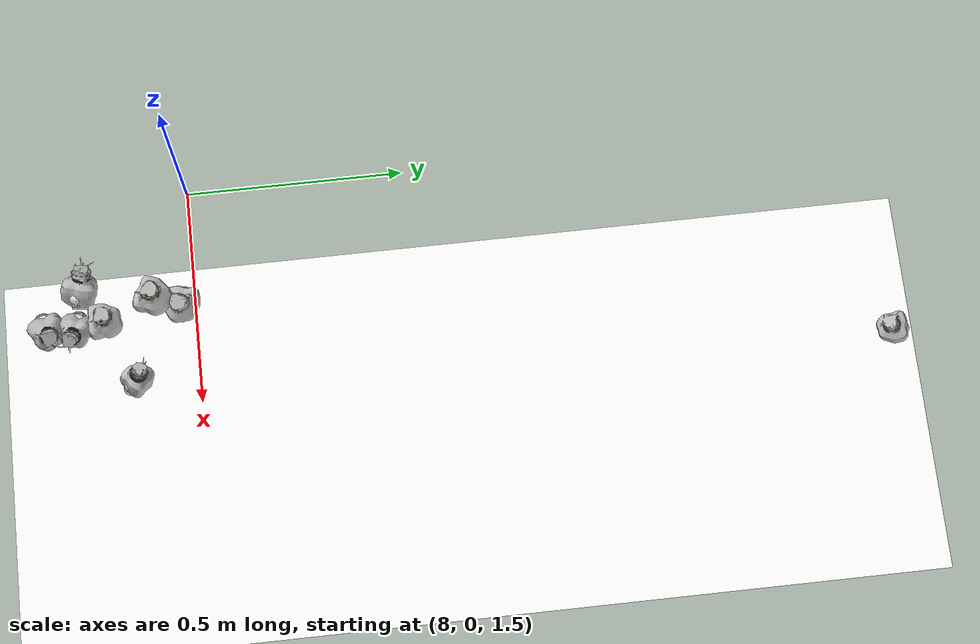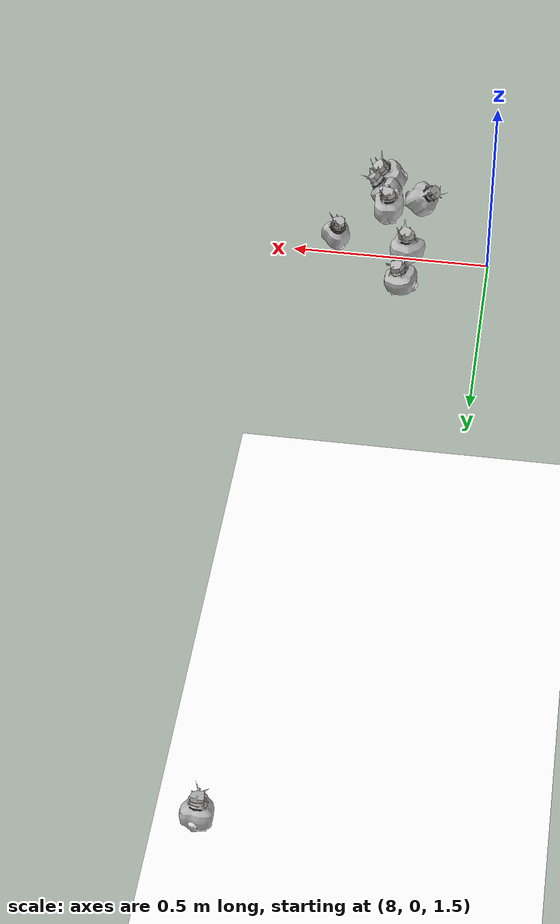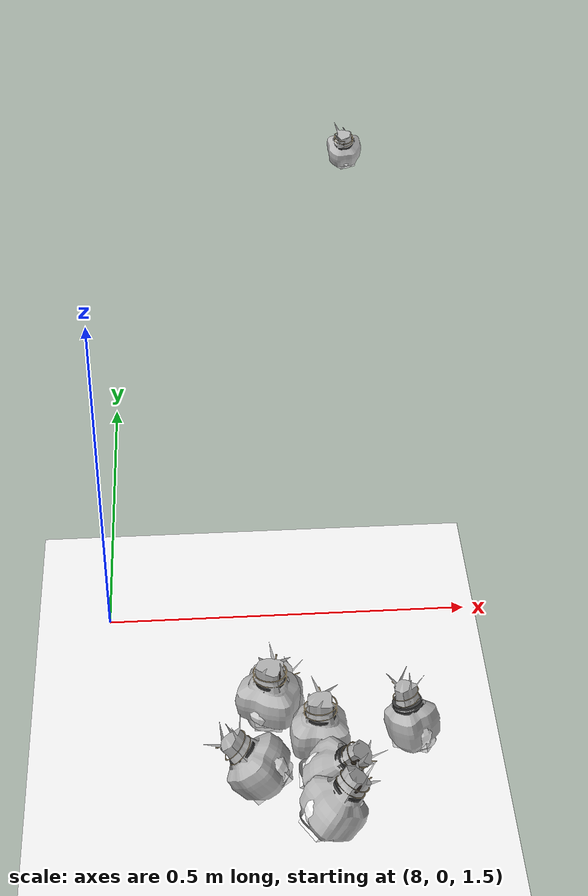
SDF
<sdf version="1.11">
 <world name="peach_orchard">
  <model name="ground">
   <static>true</static>
   <link name="link">
    <visual name="soil">
     <geometry><plane><normal>0 0 1</normal><size>32 22</size></plane></geometry>
     <material>
      <ambient>1 1 1 1</ambient>
      <diffuse>1 1 1 1</diffuse>
      <specular>0.1 0.1 0.1 1</specular>
      <pbr>
       <metal>
        <albedo_map>textures/soil_albedo.png</albedo_map>
        <normal_map type="tangent">textures/soil_normal.png</normal_map>
        <roughness>0.95</roughness>
        <metalness>0</metalness>
       </metal>
      </pbr>
     </material>
    </visual>
    <collision name="c_soil">
     <geometry><plane><normal>0 0 1</normal><size>32 22</size></plane></geometry>
    </collision>
   </link>
  </model>
  <model name="peach_tree_r4_t3_00">
   <pose>8.22 -0.0410292 1.35596 0 0.220568 -0.178716</pose>
   <static>true</static>
   <link name="bag">
    <visual name="bag_mesh">
     <pose>0 0 0.0414403 0 0 -0</pose>
     <geometry>
      <mesh><uri>model://peach_sim/meshes/bagged_peach.glb</uri><scale>1.09015 1.24049 0.941826</scale></mesh>
     </geometry>
    </visual>
    <visual name="body">
     <pose>0 0 0.0234403 0 0 0</pose>
     <geometry><ellipsoid><radii>0.0408805 0.0322527 0.0253156</radii></ellipsoid></geometry>
     <material>
      <ambient>1 1 1 1</ambient>
      <diffuse>1 1 1 1</diffuse>
      <specular>0.1 0.1 0.1 1</specular>
      <pbr>
       <metal>
        <albedo_map>textures/paper_bag_albedo.png</albedo_map>
        <normal_map type="tangent">textures/paper_bag_normal.png</normal_map>
        <roughness>0.72</roughness>
        <metalness>0</metalness>
       </metal>
      </pbr>
     </material>
    </visual>
    <visual name="bottom_fold">
     <pose>0 0 0.012 0 0 0.35</pose>
     <geometry><box><size>0.0633647 0.0370907 0.022</size></box></geometry>
     <material>
      <ambient>1 1 1 1</ambient>
      <diffuse>1 1 1 1</diffuse>
      <specular>0.1 0.1 0.1 1</specular>
      <pbr>
       <metal>
        <albedo_map>textures/paper_bag_albedo.png</albedo_map>
        <normal_map type="tangent">textures/paper_bag_normal.png</normal_map>
        <roughness>0.8</roughness>
        <metalness>0</metalness>
       </metal>
      </pbr>
     </material>
    </visual>
    <visual name="fruit">
     <pose>0 0 0.0204127 0 0 0</pose>
     <geometry><sphere><radius>0.0274692</radius></sphere></geometry>
     <material>
      <ambient>1 1 1 1</ambient>
      <diffuse>1 1 1 1</diffuse>
      <specular>0.1 0.1 0.1 1</specular>
      <pbr>
       <metal>
        <albedo_map>textures/fruit_skin_albedo.png</albedo_map>
        <normal_map type="tangent">textures/fruit_skin_normal.png</normal_map>
        <roughness>0.55</roughness>
        <metalness>0</metalness>
       </metal>
      </pbr>
     </material>
    </visual>
    <visual name="neck">
     <pose>0 0 0.0558807 0 0 0</pose>
     <geometry><cylinder><radius>0.013</radius><length>0.018</length></cylinder></geometry>
     <material>
      <ambient>1 1 1 1</ambient>
      <diffuse>1 1 1 1</diffuse>
      <specular>0.1 0.1 0.1 1</specular>
      <pbr>
       <metal>
        <albedo_map>textures/paper_bag_albedo.png</albedo_map>
        <normal_map type="tangent">textures/paper_bag_normal.png</normal_map>
        <roughness>0.75</roughness>
        <metalness>0</metalness>
       </metal>
      </pbr>
     </material>
    </visual>
    <visual name="gather">
     <pose>0 0 0.0368807 0 0 0</pose>
     <geometry><cylinder><radius>0.019</radius><length>0.02</length></cylinder></geometry>
     <material>
      <ambient>1 1 1 1</ambient>
      <diffuse>1 1 1 1</diffuse>
      <specular>0.1 0.1 0.1 1</specular>
      <pbr>
       <metal>
        <albedo_map>textures/paper_bag_albedo.png</albedo_map>
        <normal_map type="tangent">textures/paper_bag_normal.png</normal_map>
        <roughness>0.8</roughness>
        <metalness>0</metalness>
       </metal>
      </pbr>
     </material>
    </visual>
    <visual name="inner_paper">
     <pose>0 0 0.0608807 0 0 0</pose>
     <geometry><cylinder><radius>0.01</radius><length>0.008</length></cylinder></geometry>
     <material>
      <ambient>0.180392 0.14902 0.133333 1</ambient>
      <diffuse>0.180392 0.14902 0.133333 1</diffuse>
      <specular>0.1 0.1 0.1 1</specular>
     </material>
    </visual>
    <visual name="wire_0">
     <pose>0 0 0.0508807 0 0 0</pose>
     <geometry><cylinder><radius>0.0205</radius><length>0.0035</length></cylinder></geometry>
     <material>
      <ambient>0.25 0.25 0.25 1</ambient>
      <diffuse>0.25 0.25 0.25 1</diffuse>
      <specular>0.1 0.1 0.1 1</specular>
     </material>
    </visual>
    <visual name="wire_1">
     <pose>0 0 0.0578807 0 0 0</pose>
     <geometry><cylinder><radius>0.0205</radius><length>0.0035</length></cylinder></geometry>
     <material>
      <ambient>0.25 0.25 0.25 1</ambient>
      <diffuse>0.25 0.25 0.25 1</diffuse>
      <specular>0.1 0.1 0.1 1</specular>
     </material>
    </visual>
    <visual name="wire_tail">
     <pose>0.01 0 0.0588807 0 0.521618 0</pose>
     <geometry><cylinder><radius>0.0012</radius><length>0.026</length></cylinder></geometry>
     <material>
      <ambient>0.25 0.25 0.25 1</ambient>
      <diffuse>0.25 0.25 0.25 1</diffuse>
      <specular>0.1 0.1 0.1 1</specular>
     </material>
    </visual>
    <collision name="c_body">
     <pose>0 0 0.0234403 0 0 0</pose>
     <geometry><cylinder><radius>0.0408805</radius><length>0.0468807</length></cylinder></geometry>
    </collision>
   </link>
  </model>
  <model name="peach_tree_r4_t3_01">
   <pose>8.22 -0.104086 1.40624 0 0.00576709 1.08474</pose>
   <static>true</static>
   <link name="bag">
    <visual name="bag_mesh">
     <pose>0 0 0.0472173 0 0 0</pose>
     <geometry>
      <mesh><uri>model://peach_sim/meshes/bagged_peach.glb</uri><scale>1.05682 1.26254 1.07312</scale></mesh>
     </geometry>
    </visual>
    <visual name="body">
     <pose>0 0 0.0292173 0 0 0</pose>
     <geometry><ellipsoid><radii>0.0396306 0.0328259 0.0315547</radii></ellipsoid></geometry>
     <material>
      <ambient>1 1 1 1</ambient>
      <diffuse>1 1 1 1</diffuse>
      <specular>0.1 0.1 0.1 1</specular>
      <pbr>
       <metal>
        <albedo_map>textures/paper_bag_albedo.png</albedo_map>
        <normal_map type="tangent">textures/paper_bag_normal.png</normal_map>
        <roughness>0.72</roughness>
        <metalness>0</metalness>
       </metal>
      </pbr>
     </material>
    </visual>
    <visual name="bottom_fold">
     <pose>0 0 0.012 0 0 0.35</pose>
     <geometry><box><size>0.0614274 0.0377498 0.022</size></box></geometry>
     <material>
      <ambient>1 1 1 1</ambient>
      <diffuse>1 1 1 1</diffuse>
      <specular>0.1 0.1 0.1 1</specular>
      <pbr>
       <metal>
        <albedo_map>textures/paper_bag_albedo.png</albedo_map>
        <normal_map type="tangent">textures/paper_bag_normal.png</normal_map>
        <roughness>0.8</roughness>
        <metalness>0</metalness>
       </metal>
      </pbr>
     </material>
    </visual>
    <visual name="fruit">
     <pose>0 0 0.0200169 0 0 0</pose>
     <geometry><sphere><radius>0.0270576</radius></sphere></geometry>
     <material>
      <ambient>1 1 1 1</ambient>
      <diffuse>1 1 1 1</diffuse>
      <specular>0.1 0.1 0.1 1</specular>
      <pbr>
       <metal>
        <albedo_map>textures/fruit_skin_albedo.png</albedo_map>
        <normal_map type="tangent">textures/fruit_skin_normal.png</normal_map>
        <roughness>0.55</roughness>
        <metalness>0</metalness>
       </metal>
      </pbr>
     </material>
    </visual>
    <visual name="neck">
     <pose>0 0 0.0674347 0 0 0</pose>
     <geometry><cylinder><radius>0.013</radius><length>0.018</length></cylinder></geometry>
     <material>
      <ambient>1 1 1 1</ambient>
      <diffuse>1 1 1 1</diffuse>
      <specular>0.1 0.1 0.1 1</specular>
      <pbr>
       <metal>
        <albedo_map>textures/paper_bag_albedo.png</albedo_map>
        <normal_map type="tangent">textures/paper_bag_normal.png</normal_map>
        <roughness>0.75</roughness>
        <metalness>0</metalness>
       </metal>
      </pbr>
     </material>
    </visual>
    <visual name="gather">
     <pose>0 0 0.0484347 0 0 0</pose>
     <geometry><cylinder><radius>0.019</radius><length>0.02</length></cylinder></geometry>
     <material>
      <ambient>1 1 1 1</ambient>
      <diffuse>1 1 1 1</diffuse>
      <specular>0.1 0.1 0.1 1</specular>
      <pbr>
       <metal>
        <albedo_map>textures/paper_bag_albedo.png</albedo_map>
        <normal_map type="tangent">textures/paper_bag_normal.png</normal_map>
        <roughness>0.8</roughness>
        <metalness>0</metalness>
       </metal>
      </pbr>
     </material>
    </visual>
    <visual name="inner_paper">
     <pose>0 0 0.0724347 0 0 0</pose>
     <geometry><cylinder><radius>0.01</radius><length>0.008</length></cylinder></geometry>
     <material>
      <ambient>0.180392 0.14902 0.133333 1</ambient>
      <diffuse>0.180392 0.14902 0.133333 1</diffuse>
      <specular>0.1 0.1 0.1 1</specular>
     </material>
    </visual>
    <visual name="wire_0">
     <pose>0 0 0.0624347 0 0 0</pose>
     <geometry><cylinder><radius>0.0205</radius><length>0.0035</length></cylinder></geometry>
     <material>
      <ambient>0.25 0.25 0.25 1</ambient>
      <diffuse>0.25 0.25 0.25 1</diffuse>
      <specular>0.1 0.1 0.1 1</specular>
     </material>
    </visual>
    <visual name="wire_1">
     <pose>0 0 0.0694347 0 0 0</pose>
     <geometry><cylinder><radius>0.0205</radius><length>0.0035</length></cylinder></geometry>
     <material>
      <ambient>0.25 0.25 0.25 1</ambient>
      <diffuse>0.25 0.25 0.25 1</diffuse>
      <specular>0.1 0.1 0.1 1</specular>
     </material>
    </visual>
    <visual name="wire_tail">
     <pose>0.01 0 0.0704347 0 0.521618 0</pose>
     <geometry><cylinder><radius>0.0012</radius><length>0.026</length></cylinder></geometry>
     <material>
      <ambient>0.25 0.25 0.25 1</ambient>
      <diffuse>0.25 0.25 0.25 1</diffuse>
      <specular>0.1 0.1 0.1 1</specular>
     </material>
    </visual>
    <collision name="c_body">
     <pose>0 0 0.0292173 0 0 0</pose>
     <geometry><cylinder><radius>0.0396306</radius><length>0.0584347</length></cylinder></geometry>
    </collision>
   </link>
  </model>
  <model name="peach_tree_r4_t3_02">
   <pose>8.22 -0.271435 1.45 0 0.734346 2.8381</pose>
   <static>true</static>
   <link name="bag">
    <visual name="bag_mesh">
     <pose>0 0 0.0462154 0 0 0</pose>
     <geometry>
      <mesh><uri>model://peach_sim/meshes/bagged_peach.glb</uri><scale>1.00736 1.21828 1.05035</scale></mesh>
     </geometry>
    </visual>
    <visual name="body">
     <pose>0 0 0.0282154 0 0 0</pose>
     <geometry><ellipsoid><radii>0.0377759 0.0316753 0.0304727</radii></ellipsoid></geometry>
     <material>
      <ambient>1 1 1 1</ambient>
      <diffuse>1 1 1 1</diffuse>
      <specular>0.1 0.1 0.1 1</specular>
      <pbr>
       <metal>
        <albedo_map>textures/paper_bag_albedo.png</albedo_map>
        <normal_map type="tangent">textures/paper_bag_normal.png</normal_map>
        <roughness>0.72</roughness>
        <metalness>0</metalness>
       </metal>
      </pbr>
     </material>
    </visual>
    <visual name="bottom_fold">
     <pose>0 0 0.012 0 0 0.35</pose>
     <geometry><box><size>0.0585526 0.0364266 0.022</size></box></geometry>
     <material>
      <ambient>1 1 1 1</ambient>
      <diffuse>1 1 1 1</diffuse>
      <specular>0.1 0.1 0.1 1</specular>
      <pbr>
       <metal>
        <albedo_map>textures/paper_bag_albedo.png</albedo_map>
        <normal_map type="tangent">textures/paper_bag_normal.png</normal_map>
        <roughness>0.8</roughness>
        <metalness>0</metalness>
       </metal>
      </pbr>
     </material>
    </visual>
    <visual name="fruit">
     <pose>0 0 0.0198656 0 0 0</pose>
     <geometry><sphere><radius>0.0269002</radius></sphere></geometry>
     <material>
      <ambient>1 1 1 1</ambient>
      <diffuse>1 1 1 1</diffuse>
      <specular>0.1 0.1 0.1 1</specular>
      <pbr>
       <metal>
        <albedo_map>textures/fruit_skin_albedo.png</albedo_map>
        <normal_map type="tangent">textures/fruit_skin_normal.png</normal_map>
        <roughness>0.55</roughness>
        <metalness>0</metalness>
       </metal>
      </pbr>
     </material>
    </visual>
    <visual name="neck">
     <pose>0 0 0.0654309 0 0 0</pose>
     <geometry><cylinder><radius>0.013</radius><length>0.018</length></cylinder></geometry>
     <material>
      <ambient>1 1 1 1</ambient>
      <diffuse>1 1 1 1</diffuse>
      <specular>0.1 0.1 0.1 1</specular>
      <pbr>
       <metal>
        <albedo_map>textures/paper_bag_albedo.png</albedo_map>
        <normal_map type="tangent">textures/paper_bag_normal.png</normal_map>
        <roughness>0.75</roughness>
        <metalness>0</metalness>
       </metal>
      </pbr>
     </material>
    </visual>
    <visual name="gather">
     <pose>0 0 0.0464309 0 0 0</pose>
     <geometry><cylinder><radius>0.019</radius><length>0.02</length></cylinder></geometry>
     <material>
      <ambient>1 1 1 1</ambient>
      <diffuse>1 1 1 1</diffuse>
      <specular>0.1 0.1 0.1 1</specular>
      <pbr>
       <metal>
        <albedo_map>textures/paper_bag_albedo.png</albedo_map>
        <normal_map type="tangent">textures/paper_bag_normal.png</normal_map>
        <roughness>0.8</roughness>
        <metalness>0</metalness>
       </metal>
      </pbr>
     </material>
    </visual>
    <visual name="inner_paper">
     <pose>0 0 0.0704309 0 0 0</pose>
     <geometry><cylinder><radius>0.01</radius><length>0.008</length></cylinder></geometry>
     <material>
      <ambient>0.180392 0.14902 0.133333 1</ambient>
      <diffuse>0.180392 0.14902 0.133333 1</diffuse>
      <specular>0.1 0.1 0.1 1</specular>
     </material>
    </visual>
    <visual name="wire_0">
     <pose>0 0 0.0604309 0 0 0</pose>
     <geometry><cylinder><radius>0.0205</radius><length>0.0035</length></cylinder></geometry>
     <material>
      <ambient>0.25 0.25 0.25 1</ambient>
      <diffuse>0.25 0.25 0.25 1</diffuse>
      <specular>0.1 0.1 0.1 1</specular>
     </material>
    </visual>
    <visual name="wire_1">
     <pose>0 0 0.0674309 0 0 0</pose>
     <geometry><cylinder><radius>0.0205</radius><length>0.0035</length></cylinder></geometry>
     <material>
      <ambient>0.25 0.25 0.25 1</ambient>
      <diffuse>0.25 0.25 0.25 1</diffuse>
      <specular>0.1 0.1 0.1 1</specular>
     </material>
    </visual>
    <visual name="wire_tail">
     <pose>0.01 0 0.0684309 0 0.521618 0</pose>
     <geometry><cylinder><radius>0.0012</radius><length>0.026</length></cylinder></geometry>
     <material>
      <ambient>0.25 0.25 0.25 1</ambient>
      <diffuse>0.25 0.25 0.25 1</diffuse>
      <specular>0.1 0.1 0.1 1</specular>
     </material>
    </visual>
    <collision name="c_body">
     <pose>0 0 0.0282154 0 0 0</pose>
     <geometry><cylinder><radius>0.0377759</radius><length>0.0564309</length></cylinder></geometry>
    </collision>
   </link>
  </model>
  <model name="peach_tree_r4_t3_03">
   <pose>8.27245 -0.349939 1.45 0 0.590668 0.337335</pose>
   <static>true</static>
   <link name="bag">
    <visual name="bag_mesh">
     <pose>0 0 0.046776 0 0 0</pose>
     <geometry>
      <mesh><uri>model://peach_sim/meshes/bagged_peach.glb</uri><scale>1.01029 1.21573 1.06309</scale></mesh>
     </geometry>
    </visual>
    <visual name="body">
     <pose>0 0 0.028776 0 0 0</pose>
     <geometry><ellipsoid><radii>0.0378858 0.031609 0.0310781</radii></ellipsoid></geometry>
     <material>
      <ambient>1 1 1 1</ambient>
      <diffuse>1 1 1 1</diffuse>
      <specular>0.1 0.1 0.1 1</specular>
      <pbr>
       <metal>
        <albedo_map>textures/paper_bag_albedo.png</albedo_map>
        <normal_map type="tangent">textures/paper_bag_normal.png</normal_map>
        <roughness>0.72</roughness>
        <metalness>0</metalness>
       </metal>
      </pbr>
     </material>
    </visual>
    <visual name="bottom_fold">
     <pose>0 0 0.012 0 0 0.35</pose>
     <geometry><box><size>0.0587229 0.0363503 0.022</size></box></geometry>
     <material>
      <ambient>1 1 1 1</ambient>
      <diffuse>1 1 1 1</diffuse>
      <specular>0.1 0.1 0.1 1</specular>
      <pbr>
       <metal>
        <albedo_map>textures/paper_bag_albedo.png</albedo_map>
        <normal_map type="tangent">textures/paper_bag_normal.png</normal_map>
        <roughness>0.8</roughness>
        <metalness>0</metalness>
       </metal>
      </pbr>
     </material>
    </visual>
    <visual name="fruit">
     <pose>0 0 0.0205486 0 0 0</pose>
     <geometry><sphere><radius>0.0276105</radius></sphere></geometry>
     <material>
      <ambient>1 1 1 1</ambient>
      <diffuse>1 1 1 1</diffuse>
      <specular>0.1 0.1 0.1 1</specular>
      <pbr>
       <metal>
        <albedo_map>textures/fruit_skin_albedo.png</albedo_map>
        <normal_map type="tangent">textures/fruit_skin_normal.png</normal_map>
        <roughness>0.55</roughness>
        <metalness>0</metalness>
       </metal>
      </pbr>
     </material>
    </visual>
    <visual name="neck">
     <pose>0 0 0.0665521 0 0 0</pose>
     <geometry><cylinder><radius>0.013</radius><length>0.018</length></cylinder></geometry>
     <material>
      <ambient>1 1 1 1</ambient>
      <diffuse>1 1 1 1</diffuse>
      <specular>0.1 0.1 0.1 1</specular>
      <pbr>
       <metal>
        <albedo_map>textures/paper_bag_albedo.png</albedo_map>
        <normal_map type="tangent">textures/paper_bag_normal.png</normal_map>
        <roughness>0.75</roughness>
        <metalness>0</metalness>
       </metal>
      </pbr>
     </material>
    </visual>
    <visual name="gather">
     <pose>0 0 0.0475521 0 0 0</pose>
     <geometry><cylinder><radius>0.019</radius><length>0.02</length></cylinder></geometry>
     <material>
      <ambient>1 1 1 1</ambient>
      <diffuse>1 1 1 1</diffuse>
      <specular>0.1 0.1 0.1 1</specular>
      <pbr>
       <metal>
        <albedo_map>textures/paper_bag_albedo.png</albedo_map>
        <normal_map type="tangent">textures/paper_bag_normal.png</normal_map>
        <roughness>0.8</roughness>
        <metalness>0</metalness>
       </metal>
      </pbr>
     </material>
    </visual>
    <visual name="inner_paper">
     <pose>0 0 0.0715521 0 0 0</pose>
     <geometry><cylinder><radius>0.01</radius><length>0.008</length></cylinder></geometry>
     <material>
      <ambient>0.180392 0.14902 0.133333 1</ambient>
      <diffuse>0.180392 0.14902 0.133333 1</diffuse>
      <specular>0.1 0.1 0.1 1</specular>
     </material>
    </visual>
    <visual name="wire_0">
     <pose>0 0 0.0615521 0 0 0</pose>
     <geometry><cylinder><radius>0.0205</radius><length>0.0035</length></cylinder></geometry>
     <material>
      <ambient>0.25 0.25 0.25 1</ambient>
      <diffuse>0.25 0.25 0.25 1</diffuse>
      <specular>0.1 0.1 0.1 1</specular>
     </material>
    </visual>
    <visual name="wire_1">
     <pose>0 0 0.0685521 0 0 0</pose>
     <geometry><cylinder><radius>0.0205</radius><length>0.0035</length></cylinder></geometry>
     <material>
      <ambient>0.25 0.25 0.25 1</ambient>
      <diffuse>0.25 0.25 0.25 1</diffuse>
      <specular>0.1 0.1 0.1 1</specular>
     </material>
    </visual>
    <visual name="wire_tail">
     <pose>0.01 0 0.0695521 0 0.521618 0</pose>
     <geometry><cylinder><radius>0.0012</radius><length>0.026</length></cylinder></geometry>
     <material>
      <ambient>0.25 0.25 0.25 1</ambient>
      <diffuse>0.25 0.25 0.25 1</diffuse>
      <specular>0.1 0.1 0.1 1</specular>
     </material>
    </visual>
    <collision name="c_body">
     <pose>0 0 0.028776 0 0 0</pose>
     <geometry><cylinder><radius>0.0378858</radius><length>0.0575521</length></cylinder></geometry>
    </collision>
   </link>
  </model>
  <model name="peach_tree_r4_t3_05">
   <pose>8.41745 -0.15807 1.39367 0 0.252307 2.25938</pose>
   <static>true</static>
   <link name="bag">
    <visual name="bag_mesh">
     <pose>0 0 0.0486111 0 0 0</pose>
     <geometry>
      <mesh><uri>model://peach_sim/meshes/bagged_peach.glb</uri><scale>0.912537 0.976938 1.1048</scale></mesh>
     </geometry>
    </visual>
    <visual name="body">
     <pose>0 0 0.0306111 0 0 0</pose>
     <geometry><ellipsoid><radii>0.0342201 0.0254004 0.03306</radii></ellipsoid></geometry>
     <material>
      <ambient>1 1 1 1</ambient>
      <diffuse>1 1 1 1</diffuse>
      <specular>0.1 0.1 0.1 1</specular>
      <pbr>
       <metal>
        <albedo_map>textures/paper_bag_albedo.png</albedo_map>
        <normal_map type="tangent">textures/paper_bag_normal.png</normal_map>
        <roughness>0.72</roughness>
        <metalness>0</metalness>
       </metal>
      </pbr>
     </material>
    </visual>
    <visual name="bottom_fold">
     <pose>0 0 0.012 0 0 0.35</pose>
     <geometry><box><size>0.0530412 0.0292104 0.022</size></box></geometry>
     <material>
      <ambient>1 1 1 1</ambient>
      <diffuse>1 1 1 1</diffuse>
      <specular>0.1 0.1 0.1 1</specular>
      <pbr>
       <metal>
        <albedo_map>textures/paper_bag_albedo.png</albedo_map>
        <normal_map type="tangent">textures/paper_bag_normal.png</normal_map>
        <roughness>0.8</roughness>
        <metalness>0</metalness>
       </metal>
      </pbr>
     </material>
    </visual>
    <visual name="fruit">
     <pose>0 0 0.0202534 0 0 0</pose>
     <geometry><sphere><radius>0.0273035</radius></sphere></geometry>
     <material>
      <ambient>1 1 1 1</ambient>
      <diffuse>1 1 1 1</diffuse>
      <specular>0.1 0.1 0.1 1</specular>
      <pbr>
       <metal>
        <albedo_map>textures/fruit_skin_albedo.png</albedo_map>
        <normal_map type="tangent">textures/fruit_skin_normal.png</normal_map>
        <roughness>0.55</roughness>
        <metalness>0</metalness>
       </metal>
      </pbr>
     </material>
    </visual>
    <visual name="neck">
     <pose>0 0 0.0702223 0 0 0</pose>
     <geometry><cylinder><radius>0.013</radius><length>0.018</length></cylinder></geometry>
     <material>
      <ambient>1 1 1 1</ambient>
      <diffuse>1 1 1 1</diffuse>
      <specular>0.1 0.1 0.1 1</specular>
      <pbr>
       <metal>
        <albedo_map>textures/paper_bag_albedo.png</albedo_map>
        <normal_map type="tangent">textures/paper_bag_normal.png</normal_map>
        <roughness>0.75</roughness>
        <metalness>0</metalness>
       </metal>
      </pbr>
     </material>
    </visual>
    <visual name="gather">
     <pose>0 0 0.0512223 0 0 0</pose>
     <geometry><cylinder><radius>0.019</radius><length>0.02</length></cylinder></geometry>
     <material>
      <ambient>1 1 1 1</ambient>
      <diffuse>1 1 1 1</diffuse>
      <specular>0.1 0.1 0.1 1</specular>
      <pbr>
       <metal>
        <albedo_map>textures/paper_bag_albedo.png</albedo_map>
        <normal_map type="tangent">textures/paper_bag_normal.png</normal_map>
        <roughness>0.8</roughness>
        <metalness>0</metalness>
       </metal>
      </pbr>
     </material>
    </visual>
    <visual name="inner_paper">
     <pose>0 0 0.0752223 0 0 0</pose>
     <geometry><cylinder><radius>0.01</radius><length>0.008</length></cylinder></geometry>
     <material>
      <ambient>0.180392 0.14902 0.133333 1</ambient>
      <diffuse>0.180392 0.14902 0.133333 1</diffuse>
      <specular>0.1 0.1 0.1 1</specular>
     </material>
    </visual>
    <visual name="wire_0">
     <pose>0 0 0.0652223 0 0 0</pose>
     <geometry><cylinder><radius>0.0205</radius><length>0.0035</length></cylinder></geometry>
     <material>
      <ambient>0.25 0.25 0.25 1</ambient>
      <diffuse>0.25 0.25 0.25 1</diffuse>
      <specular>0.1 0.1 0.1 1</specular>
     </material>
    </visual>
    <visual name="wire_1">
     <pose>0 0 0.0722223 0 0 0</pose>
     <geometry><cylinder><radius>0.0205</radius><length>0.0035</length></cylinder></geometry>
     <material>
      <ambient>0.25 0.25 0.25 1</ambient>
      <diffuse>0.25 0.25 0.25 1</diffuse>
      <specular>0.1 0.1 0.1 1</specular>
     </material>
    </visual>
    <visual name="wire_tail">
     <pose>0.01 0 0.0732223 0 0.521618 0</pose>
     <geometry><cylinder><radius>0.0012</radius><length>0.026</length></cylinder></geometry>
     <material>
      <ambient>0.25 0.25 0.25 1</ambient>
      <diffuse>0.25 0.25 0.25 1</diffuse>
      <specular>0.1 0.1 0.1 1</specular>
     </material>
    </visual>
    <collision name="c_body">
     <pose>0 0 0.0306111 0 0 0</pose>
     <geometry><cylinder><radius>0.0342201</radius><length>0.0612223</length></cylinder></geometry>
    </collision>
   </link>
  </model>
  <model name="peach_tree_r4_t3_06">
   <pose>8.28208 -0.214717 1.45 0 0.0443494 1.501</pose>
   <static>true</static>
   <link name="bag">
    <visual name="bag_mesh">
     <pose>0 0 0.0456788 0 0 0</pose>
     <geometry>
      <mesh><uri>model://peach_sim/meshes/bagged_peach.glb</uri><scale>1.021 1.15937 1.03815</scale></mesh>
     </geometry>
    </visual>
    <visual name="body">
     <pose>0 0 0.0276788 0 0 0</pose>
     <geometry><ellipsoid><radii>0.0382875 0.0301437 0.0298931</radii></ellipsoid></geometry>
     <material>
      <ambient>1 1 1 1</ambient>
      <diffuse>1 1 1 1</diffuse>
      <specular>0.1 0.1 0.1 1</specular>
      <pbr>
       <metal>
        <albedo_map>textures/paper_bag_albedo.png</albedo_map>
        <normal_map type="tangent">textures/paper_bag_normal.png</normal_map>
        <roughness>0.72</roughness>
        <metalness>0</metalness>
       </metal>
      </pbr>
     </material>
    </visual>
    <visual name="bottom_fold">
     <pose>0 0 0.012 0 0 0.35</pose>
     <geometry><box><size>0.0593456 0.0346652 0.022</size></box></geometry>
     <material>
      <ambient>1 1 1 1</ambient>
      <diffuse>1 1 1 1</diffuse>
      <specular>0.1 0.1 0.1 1</specular>
      <pbr>
       <metal>
        <albedo_map>textures/paper_bag_albedo.png</albedo_map>
        <normal_map type="tangent">textures/paper_bag_normal.png</normal_map>
        <roughness>0.8</roughness>
        <metalness>0</metalness>
       </metal>
      </pbr>
     </material>
    </visual>
    <visual name="fruit">
     <pose>0 0 0.0176248 0 0 0</pose>
     <geometry><sphere><radius>0.0245698</radius></sphere></geometry>
     <material>
      <ambient>1 1 1 1</ambient>
      <diffuse>1 1 1 1</diffuse>
      <specular>0.1 0.1 0.1 1</specular>
      <pbr>
       <metal>
        <albedo_map>textures/fruit_skin_albedo.png</albedo_map>
        <normal_map type="tangent">textures/fruit_skin_normal.png</normal_map>
        <roughness>0.55</roughness>
        <metalness>0</metalness>
       </metal>
      </pbr>
     </material>
    </visual>
    <visual name="neck">
     <pose>0 0 0.0643576 0 0 0</pose>
     <geometry><cylinder><radius>0.013</radius><length>0.018</length></cylinder></geometry>
     <material>
      <ambient>1 1 1 1</ambient>
      <diffuse>1 1 1 1</diffuse>
      <specular>0.1 0.1 0.1 1</specular>
      <pbr>
       <metal>
        <albedo_map>textures/paper_bag_albedo.png</albedo_map>
        <normal_map type="tangent">textures/paper_bag_normal.png</normal_map>
        <roughness>0.75</roughness>
        <metalness>0</metalness>
       </metal>
      </pbr>
     </material>
    </visual>
    <visual name="gather">
     <pose>0 0 0.0453576 0 0 0</pose>
     <geometry><cylinder><radius>0.019</radius><length>0.02</length></cylinder></geometry>
     <material>
      <ambient>1 1 1 1</ambient>
      <diffuse>1 1 1 1</diffuse>
      <specular>0.1 0.1 0.1 1</specular>
      <pbr>
       <metal>
        <albedo_map>textures/paper_bag_albedo.png</albedo_map>
        <normal_map type="tangent">textures/paper_bag_normal.png</normal_map>
        <roughness>0.8</roughness>
        <metalness>0</metalness>
       </metal>
      </pbr>
     </material>
    </visual>
    <visual name="inner_paper">
     <pose>0 0 0.0693576 0 0 0</pose>
     <geometry><cylinder><radius>0.01</radius><length>0.008</length></cylinder></geometry>
     <material>
      <ambient>0.180392 0.14902 0.133333 1</ambient>
      <diffuse>0.180392 0.14902 0.133333 1</diffuse>
      <specular>0.1 0.1 0.1 1</specular>
     </material>
    </visual>
    <visual name="wire_0">
     <pose>0 0 0.0593576 0 0 0</pose>
     <geometry><cylinder><radius>0.0205</radius><length>0.0035</length></cylinder></geometry>
     <material>
      <ambient>0.25 0.25 0.25 1</ambient>
      <diffuse>0.25 0.25 0.25 1</diffuse>
      <specular>0.1 0.1 0.1 1</specular>
     </material>
    </visual>
    <visual name="wire_1">
     <pose>0 0 0.0663576 0 0 0</pose>
     <geometry><cylinder><radius>0.0205</radius><length>0.0035</length></cylinder></geometry>
     <material>
      <ambient>0.25 0.25 0.25 1</ambient>
      <diffuse>0.25 0.25 0.25 1</diffuse>
      <specular>0.1 0.1 0.1 1</specular>
     </material>
    </visual>
    <visual name="wire_tail">
     <pose>0.01 0 0.0673576 0 0.521618 0</pose>
     <geometry><cylinder><radius>0.0012</radius><length>0.026</length></cylinder></geometry>
     <material>
      <ambient>0.25 0.25 0.25 1</ambient>
      <diffuse>0.25 0.25 0.25 1</diffuse>
      <specular>0.1 0.1 0.1 1</specular>
     </material>
    </visual>
    <collision name="c_body">
     <pose>0 0 0.0276788 0 0 0</pose>
     <geometry><cylinder><radius>0.0382875</radius><length>0.0553576</length></cylinder></geometry>
    </collision>
   </link>
  </model>
  <model name="peach_tree_r4_t3_07">
   <pose>8.27172 -0.271973 1.45 0 0.698647 -0.286604</pose>
   <static>true</static>
   <link name="bag">
    <visual name="bag_mesh">
     <pose>0 0 0.0484783 0 0 -0</pose>
     <geometry>
      <mesh><uri>model://peach_sim/meshes/bagged_peach.glb</uri><scale>0.966736 1.05616 1.10178</scale></mesh>
     </geometry>
    </visual>
    <visual name="body">
     <pose>0 0 0.0304783 0 0 0</pose>
     <geometry><ellipsoid><radii>0.0362526 0.0274602 0.0329166</radii></ellipsoid></geometry>
     <material>
      <ambient>1 1 1 1</ambient>
      <diffuse>1 1 1 1</diffuse>
      <specular>0.1 0.1 0.1 1</specular>
      <pbr>
       <metal>
        <albedo_map>textures/paper_bag_albedo.png</albedo_map>
        <normal_map type="tangent">textures/paper_bag_normal.png</normal_map>
        <roughness>0.72</roughness>
        <metalness>0</metalness>
       </metal>
      </pbr>
     </material>
    </visual>
    <visual name="bottom_fold">
     <pose>0 0 0.012 0 0 0.35</pose>
     <geometry><box><size>0.0561916 0.0315792 0.022</size></box></geometry>
     <material>
      <ambient>1 1 1 1</ambient>
      <diffuse>1 1 1 1</diffuse>
      <specular>0.1 0.1 0.1 1</specular>
      <pbr>
       <metal>
        <albedo_map>textures/paper_bag_albedo.png</albedo_map>
        <normal_map type="tangent">textures/paper_bag_normal.png</normal_map>
        <roughness>0.8</roughness>
        <metalness>0</metalness>
       </metal>
      </pbr>
     </material>
    </visual>
    <visual name="fruit">
     <pose>0 0 0.0179287 0 0 0</pose>
     <geometry><sphere><radius>0.0248859</radius></sphere></geometry>
     <material>
      <ambient>1 1 1 1</ambient>
      <diffuse>1 1 1 1</diffuse>
      <specular>0.1 0.1 0.1 1</specular>
      <pbr>
       <metal>
        <albedo_map>textures/fruit_skin_albedo.png</albedo_map>
        <normal_map type="tangent">textures/fruit_skin_normal.png</normal_map>
        <roughness>0.55</roughness>
        <metalness>0</metalness>
       </metal>
      </pbr>
     </material>
    </visual>
    <visual name="neck">
     <pose>0 0 0.0699566 0 0 0</pose>
     <geometry><cylinder><radius>0.013</radius><length>0.018</length></cylinder></geometry>
     <material>
      <ambient>1 1 1 1</ambient>
      <diffuse>1 1 1 1</diffuse>
      <specular>0.1 0.1 0.1 1</specular>
      <pbr>
       <metal>
        <albedo_map>textures/paper_bag_albedo.png</albedo_map>
        <normal_map type="tangent">textures/paper_bag_normal.png</normal_map>
        <roughness>0.75</roughness>
        <metalness>0</metalness>
       </metal>
      </pbr>
     </material>
    </visual>
    <visual name="gather">
     <pose>0 0 0.0509566 0 0 0</pose>
     <geometry><cylinder><radius>0.019</radius><length>0.02</length></cylinder></geometry>
     <material>
      <ambient>1 1 1 1</ambient>
      <diffuse>1 1 1 1</diffuse>
      <specular>0.1 0.1 0.1 1</specular>
      <pbr>
       <metal>
        <albedo_map>textures/paper_bag_albedo.png</albedo_map>
        <normal_map type="tangent">textures/paper_bag_normal.png</normal_map>
        <roughness>0.8</roughness>
        <metalness>0</metalness>
       </metal>
      </pbr>
     </material>
    </visual>
    <visual name="inner_paper">
     <pose>0 0 0.0749566 0 0 0</pose>
     <geometry><cylinder><radius>0.01</radius><length>0.008</length></cylinder></geometry>
     <material>
      <ambient>0.180392 0.14902 0.133333 1</ambient>
      <diffuse>0.180392 0.14902 0.133333 1</diffuse>
      <specular>0.1 0.1 0.1 1</specular>
     </material>
    </visual>
    <visual name="wire_0">
     <pose>0 0 0.0649566 0 0 0</pose>
     <geometry><cylinder><radius>0.0205</radius><length>0.0035</length></cylinder></geometry>
     <material>
      <ambient>0.25 0.25 0.25 1</ambient>
      <diffuse>0.25 0.25 0.25 1</diffuse>
      <specular>0.1 0.1 0.1 1</specular>
     </material>
    </visual>
    <visual name="wire_1">
     <pose>0 0 0.0719566 0 0 0</pose>
     <geometry><cylinder><radius>0.0205</radius><length>0.0035</length></cylinder></geometry>
     <material>
      <ambient>0.25 0.25 0.25 1</ambient>
      <diffuse>0.25 0.25 0.25 1</diffuse>
      <specular>0.1 0.1 0.1 1</specular>
     </material>
    </visual>
    <visual name="wire_tail">
     <pose>0.01 0 0.0729566 0 0.521618 0</pose>
     <geometry><cylinder><radius>0.0012</radius><length>0.026</length></cylinder></geometry>
     <material>
      <ambient>0.25 0.25 0.25 1</ambient>
      <diffuse>0.25 0.25 0.25 1</diffuse>
      <specular>0.1 0.1 0.1 1</specular>
     </material>
    </visual>
    <collision name="c_body">
     <pose>0 0 0.0304783 0 0 0</pose>
     <geometry><cylinder><radius>0.0362526</radius><length>0.0609566</length></cylinder></geometry>
    </collision>
   </link>
  </model>
  <model name="peach_tree_r4_t4_05">
   <pose>8.45948 1.6186 1.33732 0 0.295188 -1.63974</pose>
   <static>true</static>
   <link name="bag">
    <visual name="bag_mesh">
     <pose>0 0 0.0380833 0 0 -0</pose>
     <geometry>
      <mesh><uri>model://peach_sim/meshes/bagged_peach.glb</uri><scale>0.918695 1.06615 0.865529</scale></mesh>
     </geometry>
    </visual>
    <visual name="body">
     <pose>0 0 0.0200833 0 0 0</pose>
     <geometry><ellipsoid><radii>0.0344511 0.0277198 0.0216899</radii></ellipsoid></geometry>
     <material>
      <ambient>1 1 1 1</ambient>
      <diffuse>1 1 1 1</diffuse>
      <specular>0.1 0.1 0.1 1</specular>
      <pbr>
       <metal>
        <albedo_map>textures/paper_bag_albedo.png</albedo_map>
        <normal_map type="tangent">textures/paper_bag_normal.png</normal_map>
        <roughness>0.72</roughness>
        <metalness>0</metalness>
       </metal>
      </pbr>
     </material>
    </visual>
    <visual name="bottom_fold">
     <pose>0 0 0.012 0 0 0.35</pose>
     <geometry><box><size>0.0533992 0.0318777 0.022</size></box></geometry>
     <material>
      <ambient>1 1 1 1</ambient>
      <diffuse>1 1 1 1</diffuse>
      <specular>0.1 0.1 0.1 1</specular>
      <pbr>
       <metal>
        <albedo_map>textures/paper_bag_albedo.png</albedo_map>
        <normal_map type="tangent">textures/paper_bag_normal.png</normal_map>
        <roughness>0.8</roughness>
        <metalness>0</metalness>
       </metal>
      </pbr>
     </material>
    </visual>
    <visual name="fruit">
     <pose>0 0 0.0174527 0 0 0</pose>
     <geometry><sphere><radius>0.0243908</radius></sphere></geometry>
     <material>
      <ambient>1 1 1 1</ambient>
      <diffuse>1 1 1 1</diffuse>
      <specular>0.1 0.1 0.1 1</specular>
      <pbr>
       <metal>
        <albedo_map>textures/fruit_skin_albedo.png</albedo_map>
        <normal_map type="tangent">textures/fruit_skin_normal.png</normal_map>
        <roughness>0.55</roughness>
        <metalness>0</metalness>
       </metal>
      </pbr>
     </material>
    </visual>
    <visual name="neck">
     <pose>0 0 0.0491666 0 0 0</pose>
     <geometry><cylinder><radius>0.013</radius><length>0.018</length></cylinder></geometry>
     <material>
      <ambient>1 1 1 1</ambient>
      <diffuse>1 1 1 1</diffuse>
      <specular>0.1 0.1 0.1 1</specular>
      <pbr>
       <metal>
        <albedo_map>textures/paper_bag_albedo.png</albedo_map>
        <normal_map type="tangent">textures/paper_bag_normal.png</normal_map>
        <roughness>0.75</roughness>
        <metalness>0</metalness>
       </metal>
      </pbr>
     </material>
    </visual>
    <visual name="gather">
     <pose>0 0 0.0301666 0 0 0</pose>
     <geometry><cylinder><radius>0.019</radius><length>0.02</length></cylinder></geometry>
     <material>
      <ambient>1 1 1 1</ambient>
      <diffuse>1 1 1 1</diffuse>
      <specular>0.1 0.1 0.1 1</specular>
      <pbr>
       <metal>
        <albedo_map>textures/paper_bag_albedo.png</albedo_map>
        <normal_map type="tangent">textures/paper_bag_normal.png</normal_map>
        <roughness>0.8</roughness>
        <metalness>0</metalness>
       </metal>
      </pbr>
     </material>
    </visual>
    <visual name="inner_paper">
     <pose>0 0 0.0541666 0 0 0</pose>
     <geometry><cylinder><radius>0.01</radius><length>0.008</length></cylinder></geometry>
     <material>
      <ambient>0.180392 0.14902 0.133333 1</ambient>
      <diffuse>0.180392 0.14902 0.133333 1</diffuse>
      <specular>0.1 0.1 0.1 1</specular>
     </material>
    </visual>
    <visual name="wire_0">
     <pose>0 0 0.0441666 0 0 0</pose>
     <geometry><cylinder><radius>0.0205</radius><length>0.0035</length></cylinder></geometry>
     <material>
      <ambient>0.25 0.25 0.25 1</ambient>
      <diffuse>0.25 0.25 0.25 1</diffuse>
      <specular>0.1 0.1 0.1 1</specular>
     </material>
    </visual>
    <visual name="wire_1">
     <pose>0 0 0.0511666 0 0 0</pose>
     <geometry><cylinder><radius>0.0205</radius><length>0.0035</length></cylinder></geometry>
     <material>
      <ambient>0.25 0.25 0.25 1</ambient>
      <diffuse>0.25 0.25 0.25 1</diffuse>
      <specular>0.1 0.1 0.1 1</specular>
     </material>
    </visual>
    <visual name="wire_tail">
     <pose>0.01 0 0.0521666 0 0.521618 0</pose>
     <geometry><cylinder><radius>0.0012</radius><length>0.026</length></cylinder></geometry>
     <material>
      <ambient>0.25 0.25 0.25 1</ambient>
      <diffuse>0.25 0.25 0.25 1</diffuse>
      <specular>0.1 0.1 0.1 1</specular>
     </material>
    </visual>
    <collision name="c_body">
     <pose>0 0 0.0200833 0 0 0</pose>
     <geometry><cylinder><radius>0.0344511</radius><length>0.0401666</length></cylinder></geometry>
    </collision>
   </link>
  </model>
 </world>
</sdf>
